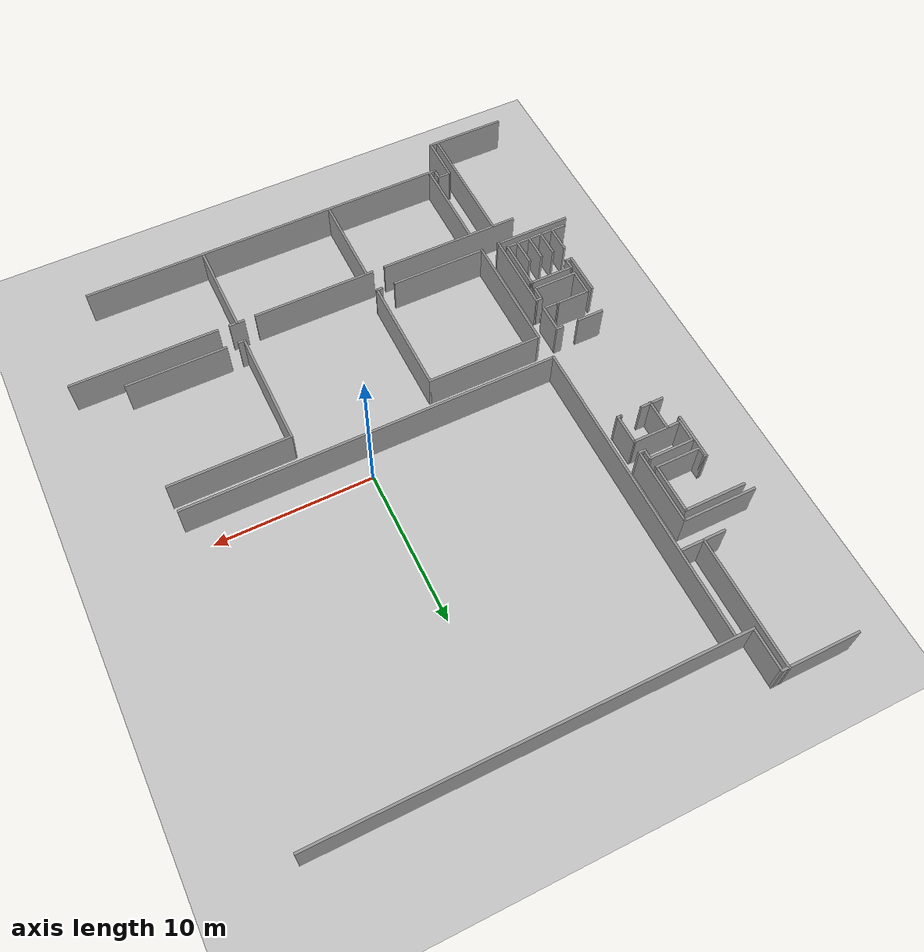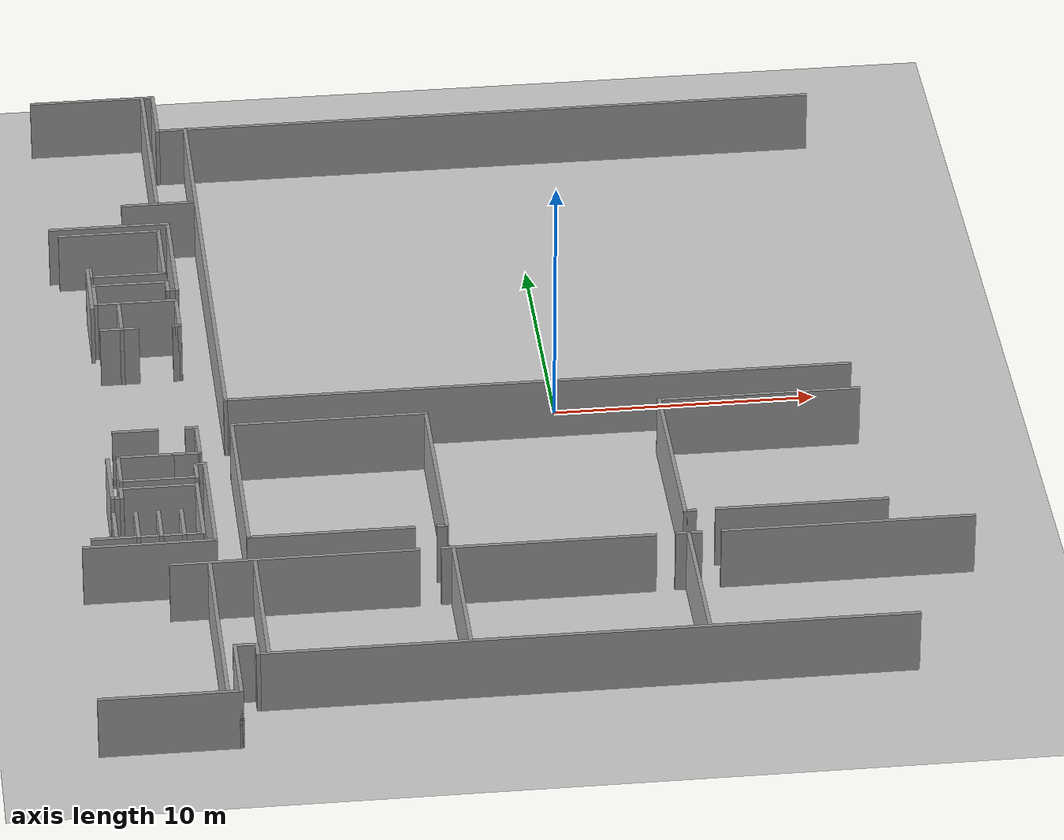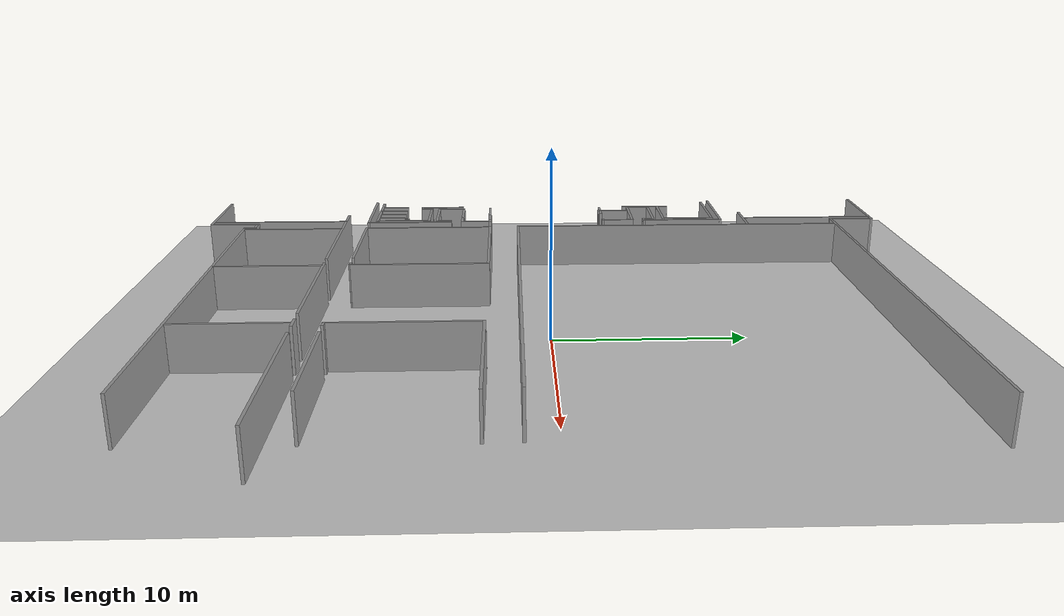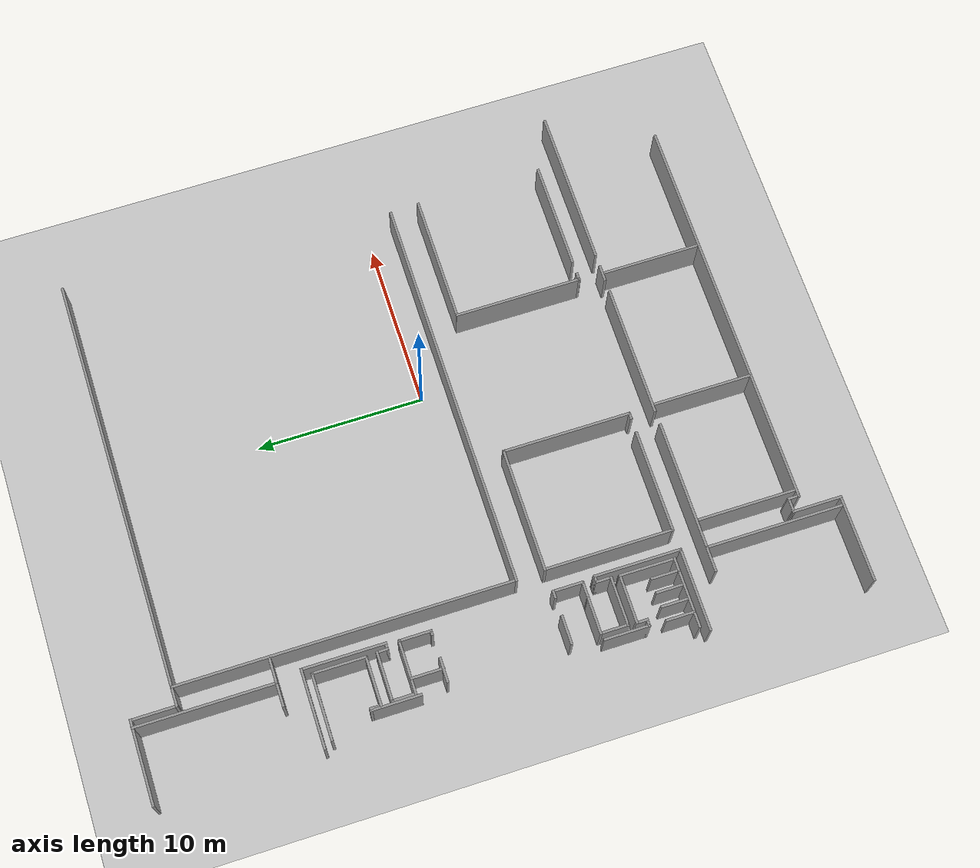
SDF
<sdf version="1.7">
 <world name="default">
  <model name="ground_plane">
   <static>1</static>
   <link name="link">
    <collision name="collision">
     <geometry><plane><normal>0 0 1</normal><size>100 100</size></plane></geometry>
     <surface>
      <contact><collide_bitmask>65535</collide_bitmask></contact>
      <friction><ode><mu>100</mu><mu2>50</mu2></ode></friction>
     </surface>
    </collision>
    <visual name="visual">
     <cast_shadows>0</cast_shadows>
     <geometry><plane><normal>0 0 1</normal><size>100 100</size></plane></geometry>
     <material>
      <script><uri>file://media/materials/scripts/gazebo.material</uri><name>Gazebo/Grey</name></script>
     </material>
    </visual>
   </link>
  </model>
  <model name="minerva">
   <pose>-0.765751 0.164905 0 0 -0 0</pose>
   <link name="Wall_0">
    <collision name="Wall_0_Collision">
     <geometry><box><size>26.25 0.15 2.5</size></box></geometry>
     <pose>0 0 1.25 0 -0 0</pose>
    </collision>
    <visual name="Wall_0_Visual">
     <pose>0 0 1.25 0 -0 0</pose>
     <geometry><box><size>26.25 0.15 2.5</size></box></geometry>
     <material>
      <script><uri>file://media/materials/scripts/gazebo.material</uri><name>Gazebo/Grey</name></script>
      <ambient>1 1 1 1</ambient>
     </material>
     <meta><layer>0</layer></meta>
    </visual>
    <pose>-0.05 18.1608 0 0 -0 0</pose>
   </link>
   <link name="Wall_230">
    <collision name="Wall_230_Collision">
     <geometry><box><size>0.5 0.15 2.5</size></box></geometry>
     <pose>0 0 1.25 0 -0 0</pose>
    </collision>
    <visual name="Wall_230_Visual">
     <pose>0 0 1.25 0 -0 0</pose>
     <geometry><box><size>0.5 0.15 2.5</size></box></geometry>
     <material>
      <script><uri>file://media/materials/scripts/gazebo.material</uri><name>Gazebo/Grey</name></script>
      <ambient>1 1 1 1</ambient>
     </material>
     <meta><layer>0</layer></meta>
    </visual>
    <pose>4.50915 -11.044 0 0 -0 3.14159</pose>
   </link>
   <link name="Wall_232">
    <collision name="Wall_232_Collision">
     <geometry><box><size>6.5 0.15 2.5</size></box></geometry>
     <pose>0 0 1.25 0 -0 0</pose>
    </collision>
    <visual name="Wall_232_Visual">
     <pose>0 0 1.25 0 -0 0</pose>
     <geometry><box><size>6.5 0.15 2.5</size></box></geometry>
     <material>
      <script><uri>file://media/materials/scripts/gazebo.material</uri><name>Gazebo/Grey</name></script>
      <ambient>1 1 1 1</ambient>
     </material>
     <meta><layer>0</layer></meta>
    </visual>
    <pose>8.71234 -11.0381 0 0 -0 0</pose>
   </link>
   <link name="Wall_234">
    <collision name="Wall_234_Collision">
     <geometry><box><size>7.75 0.15 2.5</size></box></geometry>
     <pose>0 0 1.25 0 -0 0</pose>
    </collision>
    <visual name="Wall_234_Visual">
     <pose>0 0 1.25 0 -0 0</pose>
     <geometry><box><size>7.75 0.15 2.5</size></box></geometry>
     <material>
      <script><uri>file://media/materials/scripts/gazebo.material</uri><name>Gazebo/Grey</name></script>
      <ambient>1 1 1 1</ambient>
     </material>
     <meta><layer>0</layer></meta>
    </visual>
    <pose>8.13579 -3.47613 0 0 -0 0</pose>
   </link>
   <link name="Wall_239">
    <collision name="Wall_239_Collision">
     <geometry><box><size>7.71785 0.15 2.5</size></box></geometry>
     <pose>0 0 1.25 0 -0 0</pose>
    </collision>
    <visual name="Wall_239_Visual">
     <pose>0 0 1.25 0 -0 0</pose>
     <geometry><box><size>7.71785 0.15 2.5</size></box></geometry>
     <material>
      <script><uri>file://media/materials/scripts/gazebo.material</uri><name>Gazebo/Grey</name></script>
      <ambient>1 1 1 1</ambient>
     </material>
     <meta><layer>0</layer></meta>
    </visual>
    <pose>4.33497 -7.26006 0 0 -0 -1.57101</pose>
   </link>
   <link name="Wall_241">
    <collision name="Wall_241_Collision">
     <geometry><box><size>7.5 0.15 2.5</size></box></geometry>
     <pose>0 0 1.25 0 -0 0</pose>
    </collision>
    <visual name="Wall_241_Visual">
     <pose>0 0 1.25 0 -0 0</pose>
     <geometry><box><size>7.5 0.15 2.5</size></box></geometry>
     <material>
      <script><uri>file://media/materials/scripts/gazebo.material</uri><name>Gazebo/Grey</name></script>
      <ambient>1 1 1 1</ambient>
     </material>
     <meta><layer>0</layer></meta>
    </visual>
    <pose>-8.21835 -3.44507 0 0 -0 0</pose>
   </link>
   <link name="Wall_242">
    <collision name="Wall_242_Collision">
     <geometry><box><size>7.75 0.15 2.5</size></box></geometry>
     <pose>0 0 1.25 0 -0 0</pose>
    </collision>
    <visual name="Wall_242_Visual">
     <pose>0 0 1.25 0 -0 0</pose>
     <geometry><box><size>7.75 0.15 2.5</size></box></geometry>
     <material>
      <script><uri>file://media/materials/scripts/gazebo.material</uri><name>Gazebo/Grey</name></script>
      <ambient>1 1 1 1</ambient>
     </material>
     <meta><layer>0</layer></meta>
    </visual>
    <pose>-4.54335 -7.24507 0 0 -0 -1.5708</pose>
   </link>
   <link name="Wall_245">
    <collision name="Wall_245_Collision">
     <geometry><box><size>7.75 0.15 2.5</size></box></geometry>
     <pose>0 0 1.25 0 -0 0</pose>
    </collision>
    <visual name="Wall_245_Visual">
     <pose>0 0 1.25 0 -0 0</pose>
     <geometry><box><size>7.75 0.15 2.5</size></box></geometry>
     <material>
      <script><uri>file://media/materials/scripts/gazebo.material</uri><name>Gazebo/Grey</name></script>
      <ambient>1 1 1 1</ambient>
     </material>
     <meta><layer>0</layer></meta>
    </visual>
    <pose>-11.8933 -7.24507 0 0 -0 -1.5708</pose>
   </link>
   <link name="Wall_246">
    <collision name="Wall_246_Collision">
     <geometry><box><size>6.25 0.15 2.5</size></box></geometry>
     <pose>0 0 1.25 0 -0 0</pose>
    </collision>
    <visual name="Wall_246_Visual">
     <pose>0 0 1.25 0 -0 0</pose>
     <geometry><box><size>6.25 0.15 2.5</size></box></geometry>
     <material>
      <script><uri>file://media/materials/scripts/gazebo.material</uri><name>Gazebo/Grey</name></script>
      <ambient>1 1 1 1</ambient>
     </material>
     <meta><layer>0</layer></meta>
    </visual>
    <pose>-8.84335 -11.0451 0 0 -0 0</pose>
   </link>
   <link name="Wall_248">
    <collision name="Wall_248_Collision">
     <geometry><box><size>0.448763 0.15 2.5</size></box></geometry>
     <pose>0 0 1.25 0 -0 0</pose>
    </collision>
    <visual name="Wall_248_Visual">
     <pose>0 0 1.25 0 -0 0</pose>
     <geometry><box><size>0.448763 0.15 2.5</size></box></geometry>
     <material>
      <script><uri>file://media/materials/scripts/gazebo.material</uri><name>Gazebo/Grey</name></script>
      <ambient>1 1 1 1</ambient>
     </material>
     <meta><layer>0</layer></meta>
    </visual>
    <pose>-4.69268 -11.049 0 0 -0 0.026401</pose>
   </link>
   <link name="Wall_25">
    <collision name="Wall_25_Collision">
     <geometry><box><size>5.25 0.15 2.5</size></box></geometry>
     <pose>0 0 1.25 0 -0 0</pose>
    </collision>
    <visual name="Wall_25_Visual">
     <pose>0 0 1.25 0 -0 0</pose>
     <geometry><box><size>5.25 0.15 2.5</size></box></geometry>
     <material>
      <script><uri>file://media/materials/scripts/gazebo.material</uri><name>Gazebo/Grey</name></script>
      <ambient>1 1 1 1</ambient>
     </material>
     <meta><layer>0</layer></meta>
    </visual>
    <pose>-15.5132 -20.7758 0 0 -0 0</pose>
   </link>
   <link name="Wall_26">
    <collision name="Wall_26_Collision">
     <geometry><box><size>3 0.15 2.5</size></box></geometry>
     <pose>0 0 1.25 0 -0 0</pose>
    </collision>
    <visual name="Wall_26_Visual">
     <pose>0 0 1.25 0 -0 0</pose>
     <geometry><box><size>3 0.15 2.5</size></box></geometry>
     <material>
      <script><uri>file://media/materials/scripts/gazebo.material</uri><name>Gazebo/Grey</name></script>
      <ambient>1 1 1 1</ambient>
     </material>
     <meta><layer>0</layer></meta>
    </visual>
    <pose>-12.9632 -19.3508 0 0 -0 1.5708</pose>
   </link>
   <link name="Wall_272">
    <collision name="Wall_272_Collision">
     <geometry><box><size>24 0.15 2.5</size></box></geometry>
     <pose>0 0 1.25 0 -0 0</pose>
    </collision>
    <visual name="Wall_272_Visual">
     <pose>0 0 1.25 0 -0 0</pose>
     <geometry><box><size>24 0.15 2.5</size></box></geometry>
     <material>
      <script><uri>file://media/materials/scripts/gazebo.material</uri><name>Gazebo/Grey</name></script>
      <ambient>1 1 1 1</ambient>
     </material>
     <meta><layer>0</layer></meta>
    </visual>
    <pose>-0.068213 -1.72832 0 0 -0 3.14159</pose>
   </link>
   <link name="Wall_273">
    <collision name="Wall_273_Collision">
     <geometry><box><size>20 0.15 2.5</size></box></geometry>
     <pose>0 0 1.25 0 -0 0</pose>
    </collision>
    <visual name="Wall_273_Visual">
     <pose>0 0 1.25 0 -0 0</pose>
     <geometry><box><size>20 0.15 2.5</size></box></geometry>
     <material>
      <script><uri>file://media/materials/scripts/gazebo.material</uri><name>Gazebo/Grey</name></script>
      <ambient>1 1 1 1</ambient>
     </material>
     <meta><layer>0</layer></meta>
    </visual>
    <pose>-11.9932 8.19668 0 0 -0 1.5708</pose>
   </link>
   <link name="Wall_275">
    <collision name="Wall_275_Collision">
     <geometry><box><size>3 0.15 2.5</size></box></geometry>
     <pose>0 0 1.25 0 -0 0</pose>
    </collision>
    <visual name="Wall_275_Visual">
     <pose>0 0 1.25 0 -0 0</pose>
     <geometry><box><size>3 0.15 2.5</size></box></geometry>
     <material>
      <script><uri>file://media/materials/scripts/gazebo.material</uri><name>Gazebo/Grey</name></script>
      <ambient>1 1 1 1</ambient>
     </material>
     <meta><layer>0</layer></meta>
    </visual>
    <pose>-13.4362 12.6216 0 0 -0 3.14159</pose>
   </link>
   <link name="Wall_278">
    <collision name="Wall_278_Collision">
     <geometry><box><size>8.25 0.15 2.5</size></box></geometry>
     <pose>0 0 1.25 0 -0 0</pose>
    </collision>
    <visual name="Wall_278_Visual">
     <pose>0 0 1.25 0 -0 0</pose>
     <geometry><box><size>8.25 0.15 2.5</size></box></geometry>
     <material>
      <script><uri>file://media/materials/scripts/gazebo.material</uri><name>Gazebo/Grey</name></script>
      <ambient>1 1 1 1</ambient>
     </material>
     <meta><layer>0</layer></meta>
    </visual>
    <pose>-13.5303 16.7258 0 0 -0 -1.5708</pose>
   </link>
   <link name="Wall_320">
    <collision name="Wall_320_Collision">
     <geometry><box><size>4.75 0.15 2.5</size></box></geometry>
     <pose>0 0 1.25 0 -0 0</pose>
    </collision>
    <visual name="Wall_320_Visual">
     <pose>0 0 1.25 0 -0 0</pose>
     <geometry><box><size>4.75 0.15 2.5</size></box></geometry>
     <material>
      <script><uri>file://media/materials/scripts/gazebo.material</uri><name>Gazebo/Grey</name></script>
      <ambient>1 1 1 1</ambient>
     </material>
     <meta><layer>0</layer></meta>
    </visual>
    <pose>-15.5188 11.1261 0 0 -0 0</pose>
   </link>
   <link name="Wall_321">
    <collision name="Wall_321_Collision">
     <geometry><box><size>5 0.15 2.5</size></box></geometry>
     <pose>0 0 1.25 0 -0 0</pose>
    </collision>
    <visual name="Wall_321_Visual">
     <pose>0 0 1.25 0 -0 0</pose>
     <geometry><box><size>5 0.15 2.5</size></box></geometry>
     <material>
      <script><uri>file://media/materials/scripts/gazebo.material</uri><name>Gazebo/Grey</name></script>
      <ambient>1 1 1 1</ambient>
     </material>
     <meta><layer>0</layer></meta>
    </visual>
    <pose>-13.2188 8.70108 0 0 -0 -1.5708</pose>
   </link>
   <link name="Wall_322">
    <collision name="Wall_322_Collision">
     <geometry><box><size>0.5 0.15 2.5</size></box></geometry>
     <pose>0 0 1.25 0 -0 0</pose>
    </collision>
    <visual name="Wall_322_Visual">
     <pose>0 0 1.25 0 -0 0</pose>
     <geometry><box><size>0.5 0.15 2.5</size></box></geometry>
     <material>
      <script><uri>file://media/materials/scripts/gazebo.material</uri><name>Gazebo/Grey</name></script>
      <ambient>1 1 1 1</ambient>
     </material>
     <meta><layer>0</layer></meta>
    </visual>
    <pose>-13.3938 6.27608 0 0 -0 3.14159</pose>
   </link>
   <link name="Wall_323">
    <collision name="Wall_323_Collision">
     <geometry><box><size>0.75 0.15 2.5</size></box></geometry>
     <pose>0 0 1.25 0 -0 0</pose>
    </collision>
    <visual name="Wall_323_Visual">
     <pose>0 0 1.25 0 -0 0</pose>
     <geometry><box><size>0.75 0.15 2.5</size></box></geometry>
     <material>
      <script><uri>file://media/materials/scripts/gazebo.material</uri><name>Gazebo/Grey</name></script>
      <ambient>1 1 1 1</ambient>
     </material>
     <meta><layer>0</layer></meta>
    </visual>
    <pose>-13.5688 6.57608 0 0 -0 1.5708</pose>
   </link>
   <link name="Wall_324">
    <collision name="Wall_324_Collision">
     <geometry><box><size>3 0.15 2.5</size></box></geometry>
     <pose>0 0 1.25 0 -0 0</pose>
    </collision>
    <visual name="Wall_324_Visual">
     <pose>0 0 1.25 0 -0 0</pose>
     <geometry><box><size>3 0.15 2.5</size></box></geometry>
     <material>
      <script><uri>file://media/materials/scripts/gazebo.material</uri><name>Gazebo/Grey</name></script>
      <ambient>1 1 1 1</ambient>
     </material>
     <meta><layer>0</layer></meta>
    </visual>
    <pose>-14.9938 6.87608 0 0 -0 3.14159</pose>
   </link>
   <link name="Wall_325">
    <collision name="Wall_325_Collision">
     <geometry><box><size>1.5 0.15 2.5</size></box></geometry>
     <pose>0 0 1.25 0 -0 0</pose>
    </collision>
    <visual name="Wall_325_Visual">
     <pose>0 0 1.25 0 -0 0</pose>
     <geometry><box><size>1.5 0.15 2.5</size></box></geometry>
     <material>
      <script><uri>file://media/materials/scripts/gazebo.material</uri><name>Gazebo/Grey</name></script>
      <ambient>1 1 1 1</ambient>
     </material>
     <meta><layer>0</layer></meta>
    </visual>
    <pose>-16.4188 6.20108 0 0 -0 -1.5708</pose>
   </link>
   <link name="Wall_326">
    <collision name="Wall_326_Collision">
     <geometry><box><size>3.25 0.15 2.5</size></box></geometry>
     <pose>0 0 1.25 0 -0 0</pose>
    </collision>
    <visual name="Wall_326_Visual">
     <pose>0 0 1.25 0 -0 0</pose>
     <geometry><box><size>3.25 0.15 2.5</size></box></geometry>
     <material>
      <script><uri>file://media/materials/scripts/gazebo.material</uri><name>Gazebo/Grey</name></script>
      <ambient>1 1 1 1</ambient>
     </material>
     <meta><layer>0</layer></meta>
    </visual>
    <pose>-14.8688 5.52608 0 0 -0 0</pose>
   </link>
   <link name="Wall_331">
    <collision name="Wall_331_Collision">
     <geometry><box><size>4 0.15 2.5</size></box></geometry>
     <pose>0 0 1.25 0 -0 0</pose>
    </collision>
    <visual name="Wall_331_Visual">
     <pose>0 0 1.25 0 -0 0</pose>
     <geometry><box><size>4 0.15 2.5</size></box></geometry>
     <material>
      <script><uri>file://media/materials/scripts/gazebo.material</uri><name>Gazebo/Grey</name></script>
      <ambient>1 1 1 1</ambient>
     </material>
     <meta><layer>0</layer></meta>
    </visual>
    <pose>-15.5438 10.6261 0 0 -0 0</pose>
   </link>
   <link name="Wall_332">
    <collision name="Wall_332_Collision">
     <geometry><box><size>3.25 0.15 2.5</size></box></geometry>
     <pose>0 0 1.25 0 -0 0</pose>
    </collision>
    <visual name="Wall_332_Visual">
     <pose>0 0 1.25 0 -0 0</pose>
     <geometry><box><size>3.25 0.15 2.5</size></box></geometry>
     <material>
      <script><uri>file://media/materials/scripts/gazebo.material</uri><name>Gazebo/Grey</name></script>
      <ambient>1 1 1 1</ambient>
     </material>
     <meta><layer>0</layer></meta>
    </visual>
    <pose>-13.6188 9.07608 0 0 -0 -1.5708</pose>
   </link>
   <link name="Wall_333">
    <collision name="Wall_333_Collision">
     <geometry><box><size>3 0.15 2.5</size></box></geometry>
     <pose>0 0 1.25 0 -0 0</pose>
    </collision>
    <visual name="Wall_333_Visual">
     <pose>0 0 1.25 0 -0 0</pose>
     <geometry><box><size>3 0.15 2.5</size></box></geometry>
     <material>
      <script><uri>file://media/materials/scripts/gazebo.material</uri><name>Gazebo/Grey</name></script>
      <ambient>1 1 1 1</ambient>
     </material>
     <meta><layer>0</layer></meta>
    </visual>
    <pose>-15.0438 7.52608 0 0 -0 3.14159</pose>
   </link>
   <link name="Wall_334">
    <collision name="Wall_334_Collision">
     <geometry><box><size>0.75 0.15 2.5</size></box></geometry>
     <pose>0 0 1.25 0 -0 0</pose>
    </collision>
    <visual name="Wall_334_Visual">
     <pose>0 0 1.25 0 -0 0</pose>
     <geometry><box><size>0.75 0.15 2.5</size></box></geometry>
     <material>
      <script><uri>file://media/materials/scripts/gazebo.material</uri><name>Gazebo/Grey</name></script>
      <ambient>1 1 1 1</ambient>
     </material>
     <meta><layer>0</layer></meta>
    </visual>
    <pose>-16.4688 7.82608 0 0 -0 1.5708</pose>
   </link>
   <link name="Wall_335">
    <collision name="Wall_335_Collision">
     <geometry><box><size>0.25 0.15 2.5</size></box></geometry>
     <pose>0 0 1.25 0 -0 0</pose>
    </collision>
    <visual name="Wall_335_Visual">
     <pose>0 0 1.25 0 -0 0</pose>
     <geometry><box><size>0.25 0.15 2.5</size></box></geometry>
     <material>
      <script><uri>file://media/materials/scripts/gazebo.material</uri><name>Gazebo/Grey</name></script>
      <ambient>1 1 1 1</ambient>
     </material>
     <meta><layer>0</layer></meta>
    </visual>
    <pose>-16.5188 8.12608 0 0 -0 3.14159</pose>
   </link>
   <link name="Wall_336">
    <collision name="Wall_336_Collision">
     <geometry><box><size>3 0.15 2.5</size></box></geometry>
     <pose>0 0 1.25 0 -0 0</pose>
    </collision>
    <visual name="Wall_336_Visual">
     <pose>0 0 1.25 0 -0 0</pose>
     <geometry><box><size>3 0.15 2.5</size></box></geometry>
     <material>
      <script><uri>file://media/materials/scripts/gazebo.material</uri><name>Gazebo/Grey</name></script>
      <ambient>1 1 1 1</ambient>
     </material>
     <meta><layer>0</layer></meta>
    </visual>
    <pose>-16.5688 6.70108 0 0 -0 -1.5708</pose>
   </link>
   <link name="Wall_342">
    <collision name="Wall_342_Collision">
     <geometry><box><size>1.5 0.15 2.5</size></box></geometry>
     <pose>0 0 1.25 0 -0 0</pose>
    </collision>
    <visual name="Wall_342_Visual">
     <pose>0 0 1.25 0 -0 0</pose>
     <geometry><box><size>1.5 0.15 2.5</size></box></geometry>
     <material>
      <script><uri>file://media/materials/scripts/gazebo.material</uri><name>Gazebo/Grey</name></script>
      <ambient>1 1 1 1</ambient>
     </material>
     <meta><layer>0</layer></meta>
    </visual>
    <pose>-15.6345 3.66715 0 0 -0 0</pose>
   </link>
   <link name="Wall_344">
    <collision name="Wall_344_Collision">
     <geometry><box><size>2 0.15 2.5</size></box></geometry>
     <pose>0 0 1.25 0 -0 0</pose>
    </collision>
    <visual name="Wall_344_Visual">
     <pose>0 0 1.25 0 -0 0</pose>
     <geometry><box><size>2 0.15 2.5</size></box></geometry>
     <material>
      <script><uri>file://media/materials/scripts/gazebo.material</uri><name>Gazebo/Grey</name></script>
      <ambient>1 1 1 1</ambient>
     </material>
     <meta><layer>0</layer></meta>
    </visual>
    <pose>-13.3188 4.60108 0 0 -0 -1.5708</pose>
   </link>
   <link name="Wall_345">
    <collision name="Wall_345_Collision">
     <geometry><box><size>0.25 0.15 2.5</size></box></geometry>
     <pose>0 0 1.25 0 -0 0</pose>
    </collision>
    <visual name="Wall_345_Visual">
     <pose>0 0 1.25 0 -0 0</pose>
     <geometry><box><size>0.25 0.15 2.5</size></box></geometry>
     <material>
      <script><uri>file://media/materials/scripts/gazebo.material</uri><name>Gazebo/Grey</name></script>
      <ambient>1 1 1 1</ambient>
     </material>
     <meta><layer>0</layer></meta>
    </visual>
    <pose>-13.3688 3.67608 0 0 -0 3.14159</pose>
   </link>
   <link name="Wall_346">
    <collision name="Wall_346_Collision">
     <geometry><box><size>0.25 0.15 2.5</size></box></geometry>
     <pose>0 0 1.25 0 -0 0</pose>
    </collision>
    <visual name="Wall_346_Visual">
     <pose>0 0 1.25 0 -0 0</pose>
     <geometry><box><size>0.25 0.15 2.5</size></box></geometry>
     <material>
      <script><uri>file://media/materials/scripts/gazebo.material</uri><name>Gazebo/Grey</name></script>
      <ambient>1 1 1 1</ambient>
     </material>
     <meta><layer>0</layer></meta>
    </visual>
    <pose>-13.4688 3.67608 0 0 -0 3.14159</pose>
   </link>
   <link name="Wall_348">
    <collision name="Wall_348_Collision">
     <geometry><box><size>2 0.15 2.5</size></box></geometry>
     <pose>0 0 1.25 0 -0 0</pose>
    </collision>
    <visual name="Wall_348_Visual">
     <pose>0 0 1.25 0 -0 0</pose>
     <geometry><box><size>2 0.15 2.5</size></box></geometry>
     <material>
      <script><uri>file://media/materials/scripts/gazebo.material</uri><name>Gazebo/Grey</name></script>
      <ambient>1 1 1 1</ambient>
     </material>
     <meta><layer>0</layer></meta>
    </visual>
    <pose>-15.5426 4.57431 0 0 -0 1.5708</pose>
   </link>
   <link name="Wall_382">
    <collision name="Wall_382_Collision">
     <geometry><box><size>8.25 0.15 2.5</size></box></geometry>
     <pose>0 0 1.25 0 -0 0</pose>
    </collision>
    <visual name="Wall_382_Visual">
     <pose>0 0 1.25 0 -0 0</pose>
     <geometry><box><size>8.25 0.15 2.5</size></box></geometry>
     <material>
      <script><uri>file://media/materials/scripts/gazebo.material</uri><name>Gazebo/Grey</name></script>
      <ambient>1 1 1 1</ambient>
     </material>
     <meta><layer>0</layer></meta>
    </visual>
    <pose>-13.4485 -16.5817 0 0 -0 -1.5708</pose>
   </link>
   <link name="Wall_390">
    <collision name="Wall_390_Collision">
     <geometry><box><size>2.75 0.15 2.5</size></box></geometry>
     <pose>0 0 1.25 0 -0 0</pose>
    </collision>
    <visual name="Wall_390_Visual">
     <pose>0 0 1.25 0 -0 0</pose>
     <geometry><box><size>2.75 0.15 2.5</size></box></geometry>
     <material>
      <script><uri>file://media/materials/scripts/gazebo.material</uri><name>Gazebo/Grey</name></script>
      <ambient>1 1 1 1</ambient>
     </material>
     <meta><layer>0</layer></meta>
    </visual>
    <pose>-16.7064 -6.62713 0 0 -0 -1.5708</pose>
   </link>
   <link name="Wall_391">
    <collision name="Wall_391_Collision">
     <geometry><box><size>0.5 0.15 2.5</size></box></geometry>
     <pose>0 0 1.25 0 -0 0</pose>
    </collision>
    <visual name="Wall_391_Visual">
     <pose>0 0 1.25 0 -0 0</pose>
     <geometry><box><size>0.5 0.15 2.5</size></box></geometry>
     <material>
      <script><uri>file://media/materials/scripts/gazebo.material</uri><name>Gazebo/Grey</name></script>
      <ambient>1 1 1 1</ambient>
     </material>
     <meta><layer>0</layer></meta>
    </visual>
    <pose>-16.5314 -7.92713 0 0 -0 0</pose>
   </link>
   <link name="Wall_392">
    <collision name="Wall_392_Collision">
     <geometry><box><size>0.75 0.15 2.5</size></box></geometry>
     <pose>0 0 1.25 0 -0 0</pose>
    </collision>
    <visual name="Wall_392_Visual">
     <pose>0 0 1.25 0 -0 0</pose>
     <geometry><box><size>0.75 0.15 2.5</size></box></geometry>
     <material>
      <script><uri>file://media/materials/scripts/gazebo.material</uri><name>Gazebo/Grey</name></script>
      <ambient>1 1 1 1</ambient>
     </material>
     <meta><layer>0</layer></meta>
    </visual>
    <pose>-16.3564 -7.62713 0 0 -0 1.5708</pose>
   </link>
   <link name="Wall_393">
    <collision name="Wall_393_Collision">
     <geometry><box><size>3 0.15 2.5</size></box></geometry>
     <pose>0 0 1.25 0 -0 0</pose>
    </collision>
    <visual name="Wall_393_Visual">
     <pose>0 0 1.25 0 -0 0</pose>
     <geometry><box><size>3 0.15 2.5</size></box></geometry>
     <material>
      <script><uri>file://media/materials/scripts/gazebo.material</uri><name>Gazebo/Grey</name></script>
      <ambient>1 1 1 1</ambient>
     </material>
     <meta><layer>0</layer></meta>
    </visual>
    <pose>-14.9314 -7.32713 0 0 -0 0</pose>
   </link>
   <link name="Wall_396">
    <collision name="Wall_396_Collision">
     <geometry><box><size>1.75 0.15 2.5</size></box></geometry>
     <pose>0 0 1.25 0 -0 0</pose>
    </collision>
    <visual name="Wall_396_Visual">
     <pose>0 0 1.25 0 -0 0</pose>
     <geometry><box><size>1.75 0.15 2.5</size></box></geometry>
     <material>
      <script><uri>file://media/materials/scripts/gazebo.material</uri><name>Gazebo/Grey</name></script>
      <ambient>1 1 1 1</ambient>
     </material>
     <meta><layer>0</layer></meta>
    </visual>
    <pose>-15.5415 -3.49241 0 0 -0 0</pose>
   </link>
   <link name="Wall_398">
    <collision name="Wall_398_Collision">
     <geometry><box><size>0.5 0.15 2.5</size></box></geometry>
     <pose>0 0 1.25 0 -0 0</pose>
    </collision>
    <visual name="Wall_398_Visual">
     <pose>0 0 1.25 0 -0 0</pose>
     <geometry><box><size>0.5 0.15 2.5</size></box></geometry>
     <material>
      <script><uri>file://media/materials/scripts/gazebo.material</uri><name>Gazebo/Grey</name></script>
      <ambient>1 1 1 1</ambient>
     </material>
     <meta><layer>0</layer></meta>
    </visual>
    <pose>-13.4137 -3.48364 0 0 -0 0</pose>
   </link>
   <link name="Wall_402">
    <collision name="Wall_402_Collision">
     <geometry><box><size>1.11969 0.15 2.5</size></box></geometry>
     <pose>0 0 1.25 0 -0 0</pose>
    </collision>
    <visual name="Wall_402_Visual">
     <pose>0 0 1.25 0 -0 0</pose>
     <geometry><box><size>1.11969 0.15 2.5</size></box></geometry>
     <material>
      <script><uri>file://media/materials/scripts/gazebo.material</uri><name>Gazebo/Grey</name></script>
      <ambient>1 1 1 1</ambient>
     </material>
     <meta><layer>0</layer></meta>
    </visual>
    <pose>-13.7275 -5.22198 0 0 -0 -0.005169</pose>
   </link>
   <link name="Wall_405">
    <collision name="Wall_405_Collision">
     <geometry><box><size>1.75 0.15 2.5</size></box></geometry>
     <pose>0 0 1.25 0 -0 0</pose>
    </collision>
    <visual name="Wall_405_Visual">
     <pose>0 0 1.25 0 -0 0</pose>
     <geometry><box><size>1.75 0.15 2.5</size></box></geometry>
     <material>
      <script><uri>file://media/materials/scripts/gazebo.material</uri><name>Gazebo/Grey</name></script>
      <ambient>1 1 1 1</ambient>
     </material>
     <meta><layer>0</layer></meta>
    </visual>
    <pose>-13.2377 -4.42449 0 0 -0 1.5708</pose>
   </link>
   <link name="Wall_407">
    <collision name="Wall_407_Collision">
     <geometry><box><size>2.25 0.15 2.5</size></box></geometry>
     <pose>0 0 1.25 0 -0 0</pose>
    </collision>
    <visual name="Wall_407_Visual">
     <pose>0 0 1.25 0 -0 0</pose>
     <geometry><box><size>2.25 0.15 2.5</size></box></geometry>
     <material>
      <script><uri>file://media/materials/scripts/gazebo.material</uri><name>Gazebo/Grey</name></script>
      <ambient>1 1 1 1</ambient>
     </material>
     <meta><layer>0</layer></meta>
    </visual>
    <pose>-15.2624 -5.21948 0 0 -0 3.14159</pose>
   </link>
   <link name="Wall_409">
    <collision name="Wall_409_Collision">
     <geometry><box><size>1.75 0.15 2.5</size></box></geometry>
     <pose>0 0 1.25 0 -0 0</pose>
    </collision>
    <visual name="Wall_409_Visual">
     <pose>0 0 1.25 0 -0 0</pose>
     <geometry><box><size>1.75 0.15 2.5</size></box></geometry>
     <material>
      <script><uri>file://media/materials/scripts/gazebo.material</uri><name>Gazebo/Grey</name></script>
      <ambient>1 1 1 1</ambient>
     </material>
     <meta><layer>0</layer></meta>
    </visual>
    <pose>-16.3124 -6.01948 0 0 -0 -1.5708</pose>
   </link>
   <link name="Wall_410">
    <collision name="Wall_410_Collision">
     <geometry><box><size>3 0.15 2.5</size></box></geometry>
     <pose>0 0 1.25 0 -0 0</pose>
    </collision>
    <visual name="Wall_410_Visual">
     <pose>0 0 1.25 0 -0 0</pose>
     <geometry><box><size>3 0.15 2.5</size></box></geometry>
     <material>
      <script><uri>file://media/materials/scripts/gazebo.material</uri><name>Gazebo/Grey</name></script>
      <ambient>1 1 1 1</ambient>
     </material>
     <meta><layer>0</layer></meta>
    </visual>
    <pose>-14.8874 -6.81948 0 0 -0 0</pose>
   </link>
   <link name="Wall_411">
    <collision name="Wall_411_Collision">
     <geometry><box><size>1 0.15 2.5</size></box></geometry>
     <pose>0 0 1.25 0 -0 0</pose>
    </collision>
    <visual name="Wall_411_Visual">
     <pose>0 0 1.25 0 -0 0</pose>
     <geometry><box><size>1 0.15 2.5</size></box></geometry>
     <material>
      <script><uri>file://media/materials/scripts/gazebo.material</uri><name>Gazebo/Grey</name></script>
      <ambient>1 1 1 1</ambient>
     </material>
     <meta><layer>0</layer></meta>
    </visual>
    <pose>-13.4624 -6.39448 0 0 -0 1.5708</pose>
   </link>
   <link name="Wall_413">
    <collision name="Wall_413_Collision">
     <geometry><box><size>0.5 0.15 2.5</size></box></geometry>
     <pose>0 0 1.25 0 -0 0</pose>
    </collision>
    <visual name="Wall_413_Visual">
     <pose>0 0 1.25 0 -0 0</pose>
     <geometry><box><size>0.5 0.15 2.5</size></box></geometry>
     <material>
      <script><uri>file://media/materials/scripts/gazebo.material</uri><name>Gazebo/Grey</name></script>
      <ambient>1 1 1 1</ambient>
     </material>
     <meta><layer>0</layer></meta>
    </visual>
    <pose>-13.2874 -5.96948 0 0 -0 0</pose>
   </link>
   <link name="Wall_415">
    <collision name="Wall_415_Collision">
     <geometry><box><size>5.25 0.15 2.5</size></box></geometry>
     <pose>0 0 1.25 0 -0 0</pose>
    </collision>
    <visual name="Wall_415_Visual">
     <pose>0 0 1.25 0 -0 0</pose>
     <geometry><box><size>5.25 0.15 2.5</size></box></geometry>
     <material>
      <script><uri>file://media/materials/scripts/gazebo.material</uri><name>Gazebo/Grey</name></script>
      <ambient>1 1 1 1</ambient>
     </material>
     <meta><layer>0</layer></meta>
    </visual>
    <pose>-13.1124 -8.51948 0 0 -0 -1.5708</pose>
   </link>
   <link name="Wall_416">
    <collision name="Wall_416_Collision">
     <geometry><box><size>5 0.15 2.5</size></box></geometry>
     <pose>0 0 1.25 0 -0 0</pose>
    </collision>
    <visual name="Wall_416_Visual">
     <pose>0 0 1.25 0 -0 0</pose>
     <geometry><box><size>5 0.15 2.5</size></box></geometry>
     <material>
      <script><uri>file://media/materials/scripts/gazebo.material</uri><name>Gazebo/Grey</name></script>
      <ambient>1 1 1 1</ambient>
     </material>
     <meta><layer>0</layer></meta>
    </visual>
    <pose>-15.5374 -11.0695 0 0 -0 3.14159</pose>
   </link>
   <link name="Wall_420">
    <collision name="Wall_420_Collision">
     <geometry><box><size>4.25 0.15 2.5</size></box></geometry>
     <pose>0 0 1.25 0 -0 0</pose>
    </collision>
    <visual name="Wall_420_Visual">
     <pose>0 0 1.25 0 -0 0</pose>
     <geometry><box><size>4.25 0.15 2.5</size></box></geometry>
     <material>
      <script><uri>file://media/materials/scripts/gazebo.material</uri><name>Gazebo/Grey</name></script>
      <ambient>1 1 1 1</ambient>
     </material>
     <meta><layer>0</layer></meta>
    </visual>
    <pose>-15.5624 -10.5695 0 0 -0 0</pose>
   </link>
   <link name="Wall_421">
    <collision name="Wall_421_Collision">
     <geometry><box><size>3.39236 0.15 2.5</size></box></geometry>
     <pose>0 0 1.25 0 -0 0</pose>
    </collision>
    <visual name="Wall_421_Visual">
     <pose>0 0 1.25 0 -0 0</pose>
     <geometry><box><size>3.39236 0.15 2.5</size></box></geometry>
     <material>
      <script><uri>file://media/materials/scripts/gazebo.material</uri><name>Gazebo/Grey</name></script>
      <ambient>1 1 1 1</ambient>
     </material>
     <meta><layer>0</layer></meta>
    </visual>
    <pose>-13.5094 -8.9483 0 0 -0 1.56895</pose>
   </link>
   <link name="Wall_423">
    <collision name="Wall_423_Collision">
     <geometry><box><size>1.75 0.15 2.5</size></box></geometry>
     <pose>0 0 1.25 0 -0 0</pose>
    </collision>
    <visual name="Wall_423_Visual">
     <pose>0 0 1.25 0 -0 0</pose>
     <geometry><box><size>1.75 0.15 2.5</size></box></geometry>
     <material>
      <script><uri>file://media/materials/scripts/gazebo.material</uri><name>Gazebo/Grey</name></script>
      <ambient>1 1 1 1</ambient>
     </material>
     <meta><layer>0</layer></meta>
    </visual>
    <pose>-16.7342 -9.75953 0 0 -0 -1.5708</pose>
   </link>
   <link name="Wall_425">
    <collision name="Wall_425_Collision">
     <geometry><box><size>1.75 0.15 2.5</size></box></geometry>
     <pose>0 0 1.25 0 -0 0</pose>
    </collision>
    <visual name="Wall_425_Visual">
     <pose>0 0 1.25 0 -0 0</pose>
     <geometry><box><size>1.75 0.15 2.5</size></box></geometry>
     <material>
      <script><uri>file://media/materials/scripts/gazebo.material</uri><name>Gazebo/Grey</name></script>
      <ambient>1 1 1 1</ambient>
     </material>
     <meta><layer>0</layer></meta>
    </visual>
    <pose>-15.9151 -9.76986 0 0 -0 -1.5708</pose>
   </link>
   <link name="Wall_427">
    <collision name="Wall_427_Collision">
     <geometry><box><size>1.75 0.15 2.5</size></box></geometry>
     <pose>0 0 1.25 0 -0 0</pose>
    </collision>
    <visual name="Wall_427_Visual">
     <pose>0 0 1.25 0 -0 0</pose>
     <geometry><box><size>1.75 0.15 2.5</size></box></geometry>
     <material>
      <script><uri>file://media/materials/scripts/gazebo.material</uri><name>Gazebo/Grey</name></script>
      <ambient>1 1 1 1</ambient>
     </material>
     <meta><layer>0</layer></meta>
    </visual>
    <pose>-15.0682 -9.76986 0 0 -0 -1.5708</pose>
   </link>
   <link name="Wall_429">
    <collision name="Wall_429_Collision">
     <geometry><box><size>1.75 0.15 2.5</size></box></geometry>
     <pose>0 0 1.25 0 -0 0</pose>
    </collision>
    <visual name="Wall_429_Visual">
     <pose>0 0 1.25 0 -0 0</pose>
     <geometry><box><size>1.75 0.15 2.5</size></box></geometry>
     <material>
      <script><uri>file://media/materials/scripts/gazebo.material</uri><name>Gazebo/Grey</name></script>
      <ambient>1 1 1 1</ambient>
     </material>
     <meta><layer>0</layer></meta>
    </visual>
    <pose>-14.2213 -9.76986 0 0 -0 -1.5708</pose>
   </link>
   <link name="Wall_6">
    <collision name="Wall_6_Collision">
     <geometry><box><size>2.75 0.15 2.5</size></box></geometry>
     <pose>0 0 1.25 0 -0 0</pose>
    </collision>
    <visual name="Wall_6_Visual">
     <pose>0 0 1.25 0 -0 0</pose>
     <geometry><box><size>2.75 0.15 2.5</size></box></geometry>
     <material>
      <script><uri>file://media/materials/scripts/gazebo.material</uri><name>Gazebo/Grey</name></script>
      <ambient>1 1 1 1</ambient>
     </material>
     <meta><layer>0</layer></meta>
    </visual>
    <pose>-13.1 19.4608 0 0 -0 1.5708</pose>
   </link>
   <link name="Wall_7">
    <collision name="Wall_7_Collision">
     <geometry><box><size>5 0.15 2.5</size></box></geometry>
     <pose>0 0 1.25 0 -0 0</pose>
    </collision>
    <visual name="Wall_7_Visual">
     <pose>0 0 1.25 0 -0 0</pose>
     <geometry><box><size>5 0.15 2.5</size></box></geometry>
     <material>
      <script><uri>file://media/materials/scripts/gazebo.material</uri><name>Gazebo/Grey</name></script>
      <ambient>1 1 1 1</ambient>
     </material>
     <meta><layer>0</layer></meta>
    </visual>
    <pose>-15.525 20.7608 0 0 -0 3.14159</pose>
   </link>
   <link name="Wall_70">
    <collision name="Wall_70_Collision">
     <geometry><box><size>24.25 0.15 2.5</size></box></geometry>
     <pose>0 0 1.25 0 -0 0</pose>
    </collision>
    <visual name="Wall_70_Visual">
     <pose>0 0 1.25 0 -0 0</pose>
     <geometry><box><size>24.25 0.15 2.5</size></box></geometry>
     <material>
      <script><uri>file://media/materials/scripts/gazebo.material</uri><name>Gazebo/Grey</name></script>
      <ambient>1 1 1 1</ambient>
     </material>
     <meta><layer>0</layer></meta>
    </visual>
    <pose>-0.12202 -18.5391 0 0 -0 3.14159</pose>
   </link>
   <link name="Wall_71">
    <collision name="Wall_71_Collision">
     <geometry><box><size>0.75 0.15 2.5</size></box></geometry>
     <pose>0 0 1.25 0 -0 0</pose>
    </collision>
    <visual name="Wall_71_Visual">
     <pose>0 0 1.25 0 -0 0</pose>
     <geometry><box><size>0.75 0.15 2.5</size></box></geometry>
     <material>
      <script><uri>file://media/materials/scripts/gazebo.material</uri><name>Gazebo/Grey</name></script>
      <ambient>1 1 1 1</ambient>
     </material>
     <meta><layer>0</layer></meta>
    </visual>
    <pose>-12.172 -18.2391 0 0 -0 1.5708</pose>
   </link>
   <link name="Wall_72">
    <collision name="Wall_72_Collision">
     <geometry><box><size>0.941279 0.15 2.5</size></box></geometry>
     <pose>0 0 1.25 0 -0 0</pose>
    </collision>
    <visual name="Wall_72_Visual">
     <pose>0 0 1.25 0 -0 0</pose>
     <geometry><box><size>0.941279 0.15 2.5</size></box></geometry>
     <material>
      <script><uri>file://media/materials/scripts/gazebo.material</uri><name>Gazebo/Grey</name></script>
      <ambient>1 1 1 1</ambient>
     </material>
     <meta><layer>0</layer></meta>
    </visual>
    <pose>-12.5676 -17.9325 0 0 -0 3.12472</pose>
   </link>
   <link name="Wall_87">
    <collision name="Wall_87_Collision">
     <geometry><box><size>6 0.15 2.5</size></box></geometry>
     <pose>0 0 1.25 0 -0 0</pose>
    </collision>
    <visual name="Wall_87_Visual">
     <pose>0 0 1.25 0 -0 0</pose>
     <geometry><box><size>6 0.15 2.5</size></box></geometry>
     <material>
      <script><uri>file://media/materials/scripts/gazebo.material</uri><name>Gazebo/Grey</name></script>
      <ambient>1 1 1 1</ambient>
     </material>
     <meta><layer>0</layer></meta>
    </visual>
    <pose>-11.7864 -15.5131 0 0 -0 -1.5708</pose>
   </link>
   <link name="Wall_89">
    <collision name="Wall_89_Collision">
     <geometry><box><size>9.25 0.15 2.5</size></box></geometry>
     <pose>0 0 1.25 0 -0 0</pose>
    </collision>
    <visual name="Wall_89_Visual">
     <pose>0 0 1.25 0 -0 0</pose>
     <geometry><box><size>9.25 0.15 2.5</size></box></geometry>
     <material>
      <script><uri>file://media/materials/scripts/gazebo.material</uri><name>Gazebo/Grey</name></script>
      <ambient>1 1 1 1</ambient>
     </material>
     <meta><layer>0</layer></meta>
    </visual>
    <pose>-10.3086 -12.5207 0 0 -0 0</pose>
   </link>
   <link name="Wall_91">
    <collision name="Wall_91_Collision">
     <geometry><box><size>8 0.15 2.5</size></box></geometry>
     <pose>0 0 1.25 0 -0 0</pose>
    </collision>
    <visual name="Wall_91_Visual">
     <pose>0 0 1.25 0 -0 0</pose>
     <geometry><box><size>8 0.15 2.5</size></box></geometry>
     <material>
      <script><uri>file://media/materials/scripts/gazebo.material</uri><name>Gazebo/Grey</name></script>
      <ambient>1 1 1 1</ambient>
     </material>
     <meta><layer>0</layer></meta>
    </visual>
    <pose>-0.911008 -12.5054 0 0 -0 0</pose>
   </link>
   <link name="Wall_93">
    <collision name="Wall_93_Collision">
     <geometry><box><size>6 0.15 2.5</size></box></geometry>
     <pose>0 0 1.25 0 -0 0</pose>
    </collision>
    <visual name="Wall_93_Visual">
     <pose>0 0 1.25 0 -0 0</pose>
     <geometry><box><size>6 0.15 2.5</size></box></geometry>
     <material>
      <script><uri>file://media/materials/scripts/gazebo.material</uri><name>Gazebo/Grey</name></script>
      <ambient>1 1 1 1</ambient>
     </material>
     <meta><layer>0</layer></meta>
    </visual>
    <pose>-4.45579 -15.5217 0 0 -0 -1.5708</pose>
   </link>
   <link name="Wall_95">
    <collision name="Wall_95_Collision">
     <geometry><box><size>1 0.15 2.5</size></box></geometry>
     <pose>0 0 1.25 0 -0 0</pose>
    </collision>
    <visual name="Wall_95_Visual">
     <pose>0 0 1.25 0 -0 0</pose>
     <geometry><box><size>1 0.15 2.5</size></box></geometry>
     <material>
      <script><uri>file://media/materials/scripts/gazebo.material</uri><name>Gazebo/Grey</name></script>
      <ambient>1 1 1 1</ambient>
     </material>
     <meta><layer>0</layer></meta>
    </visual>
    <pose>4.2884 -12.4902 0 0 -0 0</pose>
   </link>
   <link name="Wall_97">
    <collision name="Wall_97_Collision">
     <geometry><box><size>9.5 0.15 2.5</size></box></geometry>
     <pose>0 0 1.25 0 -0 0</pose>
    </collision>
    <visual name="Wall_97_Visual">
     <pose>0 0 1.25 0 -0 0</pose>
     <geometry><box><size>9.5 0.15 2.5</size></box></geometry>
     <material>
      <script><uri>file://media/materials/scripts/gazebo.material</uri><name>Gazebo/Grey</name></script>
      <ambient>1 1 1 1</ambient>
     </material>
     <meta><layer>0</layer></meta>
    </visual>
    <pose>10.2418 -12.4902 0 0 -0 0</pose>
   </link>
   <link name="Wall_99">
    <collision name="Wall_99_Collision">
     <geometry><box><size>6 0.15 2.5</size></box></geometry>
     <pose>0 0 1.25 0 -0 0</pose>
    </collision>
    <visual name="Wall_99_Visual">
     <pose>0 0 1.25 0 -0 0</pose>
     <geometry><box><size>6 0.15 2.5</size></box></geometry>
     <material>
      <script><uri>file://media/materials/scripts/gazebo.material</uri><name>Gazebo/Grey</name></script>
      <ambient>1 1 1 1</ambient>
     </material>
     <meta><layer>0</layer></meta>
    </visual>
    <pose>4.27403 -15.4761 0 0 -0 -1.5708</pose>
   </link>
   <static>1</static>
  </model>
 </world>
</sdf>
